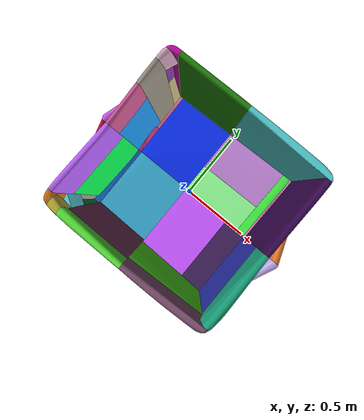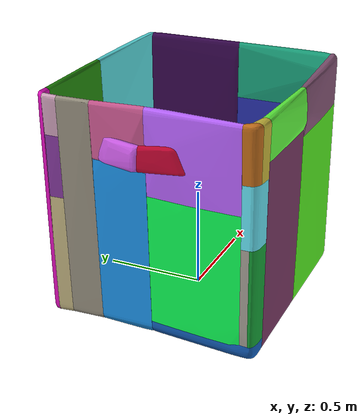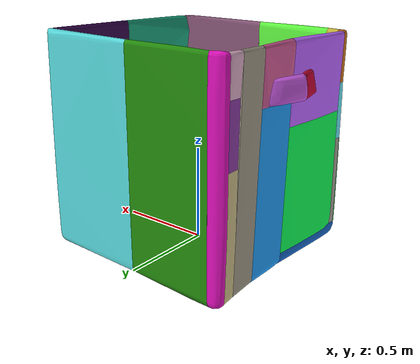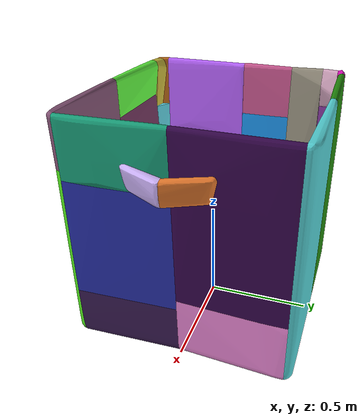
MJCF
<mujoco model="closet">
  <default>
    <default class="visual">
      <geom group="1" type="mesh" contype="0" conaffinity="0"/>
    </default>
    <default class="collision">
      <geom group="0" type="mesh"/>
    </default>
  </default>
  <asset>
    <texture type="2d" name="texture" file="texture.png"/>
    <material name="material_0" texture="texture" specular="0.5" shininess="0.5"/>
    <mesh name="closet" file="closet.obj"/>
    <mesh name="closet_collision_0" file="closet_collision_0.obj"/>
    <mesh name="closet_collision_1" file="closet_collision_1.obj"/>
    <mesh name="closet_collision_2" file="closet_collision_2.obj"/>
    <mesh name="closet_collision_3" file="closet_collision_3.obj"/>
    <mesh name="closet_collision_4" file="closet_collision_4.obj"/>
    <mesh name="closet_collision_5" file="closet_collision_5.obj"/>
    <mesh name="closet_collision_6" file="closet_collision_6.obj"/>
    <mesh name="closet_collision_7" file="closet_collision_7.obj"/>
    <mesh name="closet_collision_8" file="closet_collision_8.obj"/>
    <mesh name="closet_collision_9" file="closet_collision_9.obj"/>
    <mesh name="closet_collision_10" file="closet_collision_10.obj"/>
    <mesh name="closet_collision_11" file="closet_collision_11.obj"/>
    <mesh name="closet_collision_12" file="closet_collision_12.obj"/>
    <mesh name="closet_collision_13" file="closet_collision_13.obj"/>
    <mesh name="closet_collision_14" file="closet_collision_14.obj"/>
    <mesh name="closet_collision_15" file="closet_collision_15.obj"/>
    <mesh name="closet_collision_16" file="closet_collision_16.obj"/>
    <mesh name="closet_collision_17" file="closet_collision_17.obj"/>
    <mesh name="closet_collision_18" file="closet_collision_18.obj"/>
    <mesh name="closet_collision_19" file="closet_collision_19.obj"/>
    <mesh name="closet_collision_20" file="closet_collision_20.obj"/>
    <mesh name="closet_collision_21" file="closet_collision_21.obj"/>
    <mesh name="closet_collision_22" file="closet_collision_22.obj"/>
    <mesh name="closet_collision_23" file="closet_collision_23.obj"/>
    <mesh name="closet_collision_24" file="closet_collision_24.obj"/>
    <mesh name="closet_collision_25" file="closet_collision_25.obj"/>
    <mesh name="closet_collision_26" file="closet_collision_26.obj"/>
    <mesh name="closet_collision_27" file="closet_collision_27.obj"/>
    <mesh name="closet_collision_28" file="closet_collision_28.obj"/>
    <mesh name="closet_collision_29" file="closet_collision_29.obj"/>
    <mesh name="closet_collision_30" file="closet_collision_30.obj"/>
    <mesh name="closet_collision_31" file="closet_collision_31.obj"/>
    <mesh name="closet_collision_32" file="closet_collision_32.obj"/>
    <mesh name="closet_collision_33" file="closet_collision_33.obj"/>
    <mesh name="closet_collision_34" file="closet_collision_34.obj"/>
    <mesh name="closet_collision_35" file="closet_collision_35.obj"/>
    <mesh name="closet_collision_36" file="closet_collision_36.obj"/>
    <mesh name="closet_collision_37" file="closet_collision_37.obj"/>
    <mesh name="closet_collision_38" file="closet_collision_38.obj"/>
  </asset>
  <worldbody>
    <body>
      <body name="object">
        <geom material="material_0" mesh="closet" class="visual"/>
        <geom mesh="closet_collision_0" rgba="0.33762147084390726 0.8419819731060794 0.8561656374292748 1" class="collision"/>
        <geom mesh="closet_collision_1" rgba="0.5107787918885951 0.32475984812147995 0.45257289984659144 1" class="collision"/>
        <geom mesh="closet_collision_2" rgba="0.19576290596804435 0.6221114259155092 0.7613427494410763 1" class="collision"/>
        <geom mesh="closet_collision_3" rgba="0.13828223870846468 0.536194854977089 0.04956883449513494 1" class="collision"/>
        <geom mesh="closet_collision_4" rgba="0.3296963072665292 0.9214708769229787 0.12474307394414696 1" class="collision"/>
        <geom mesh="closet_collision_5" rgba="0.5802705555728439 0.5539925050230746 0.48930730602036754 1" class="collision"/>
        <geom mesh="closet_collision_6" rgba="0.10980987610150639 0.5767826020898841 0.913240754710407 1" class="collision"/>
        <geom mesh="closet_collision_7" rgba="0.911590419195673 0.4820673080925464 0.1809545015758901 1" class="collision"/>
        <geom mesh="closet_collision_8" rgba="0.3741259649465508 0.9643218197915174 0.24851727713734428 1" class="collision"/>
        <geom mesh="closet_collision_9" rgba="0.21758190441611014 0.1047892510712296 0.31313867105971993 1" class="collision"/>
        <geom mesh="closet_collision_10" rgba="0.1488737543496118 0.1794227477642184 0.6401796868787378 1" class="collision"/>
        <geom mesh="closet_collision_11" rgba="0.7645528429503251 0.32967712333909205 0.9868627146426765 1" class="collision"/>
        <geom mesh="closet_collision_12" rgba="0.02950579701141265 0.17325285796902778 0.9058432157686361 1" class="collision"/>
        <geom mesh="closet_collision_13" rgba="0.4595882770501454 0.21160701735387422 0.37701347507349536 1" class="collision"/>
        <geom mesh="closet_collision_14" rgba="0.204553909683721 0.02664923550743048 0.288200680207261 1" class="collision"/>
        <geom mesh="closet_collision_15" rgba="0.7894220673073785 0.6879616301081004 0.9590376197816567 1" class="collision"/>
        <geom mesh="closet_collision_16" rgba="0.857551570204975 0.4218018573779585 0.522025638253784 1" class="collision"/>
        <geom mesh="closet_collision_17" rgba="0.788721976282397 0.34333151943051754 0.5638490792642549 1" class="collision"/>
        <geom mesh="closet_collision_18" rgba="0.8114839136950271 0.21837302182864105 0.4809239821291039 1" class="collision"/>
        <geom mesh="closet_collision_19" rgba="0.07655564443708396 0.37067930978617014 0.727145986648082 1" class="collision"/>
        <geom mesh="closet_collision_20" rgba="0.7159294737219905 0.38632166393016676 0.9884905331783614 1" class="collision"/>
        <geom mesh="closet_collision_21" rgba="0.0947019005481814 0.6147194291177135 0.4698453703031551 1" class="collision"/>
        <geom mesh="closet_collision_22" rgba="0.8037032746157506 0.6290571602008519 0.7279179696824212 1" class="collision"/>
        <geom mesh="closet_collision_23" rgba="0.3913256695399031 0.8728362239682406 0.9368921229481809 1" class="collision"/>
        <geom mesh="closet_collision_24" rgba="0.24328403868826254 0.8940578734699809 0.23977955571290877 1" class="collision"/>
        <geom mesh="closet_collision_25" rgba="0.8858192698783991 0.5105068462718834 0.803889063664859 1" class="collision"/>
        <geom mesh="closet_collision_26" rgba="0.535373194333864 0.9437558997942407 0.5559097979003205 1" class="collision"/>
        <geom mesh="closet_collision_27" rgba="0.05085505501098053 0.9673649678359161 0.3265311407400895 1" class="collision"/>
        <geom mesh="closet_collision_28" rgba="0.7249063603892844 0.4989090685517069 0.8139240314608819 1" class="collision"/>
        <geom mesh="closet_collision_29" rgba="0.5936252202180168 0.9543912953161044 0.9245315043102776 1" class="collision"/>
        <geom mesh="closet_collision_30" rgba="0.7698378734446475 0.7057900875799116 0.22866549712036244 1" class="collision"/>
        <geom mesh="closet_collision_31" rgba="0.7603110057528516 0.019536438030362646 0.19277832318035315 1" class="collision"/>
        <geom mesh="closet_collision_32" rgba="0.5048440858599409 0.213776454472419 0.601635142214458 1" class="collision"/>
        <geom mesh="closet_collision_33" rgba="0.6221581957391217 0.5997706575267854 0.5634124744429587 1" class="collision"/>
        <geom mesh="closet_collision_34" rgba="0.7642954431541191 0.433428959508676 0.10850122441977628 1" class="collision"/>
        <geom mesh="closet_collision_35" rgba="0.7514019596094236 0.6956516997362591 0.49896384503121216 1" class="collision"/>
        <geom mesh="closet_collision_36" rgba="0.7792563508052965 0.3508620848478877 0.8791720982405293 1" class="collision"/>
        <geom mesh="closet_collision_37" rgba="0.08261979204254477 0.6213397422926822 0.2113042587874815 1" class="collision"/>
        <geom mesh="closet_collision_38" rgba="0.8537930402441066 0.05660173326312623 0.7143260544667815 1" class="collision"/>
      </body>
    </body>
  </worldbody>
</mujoco>
